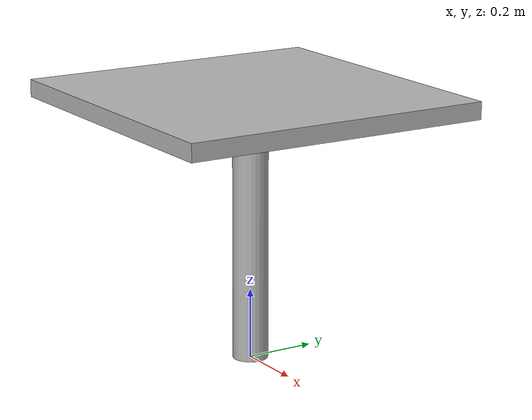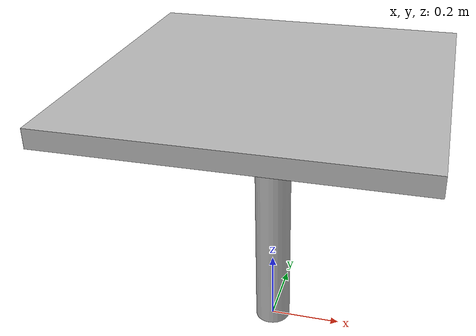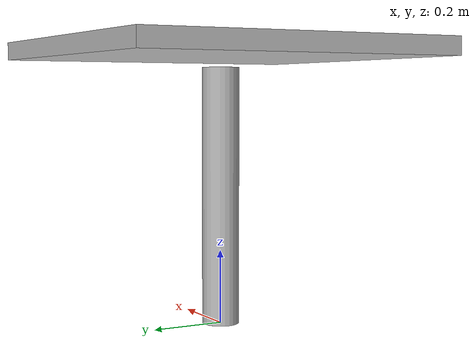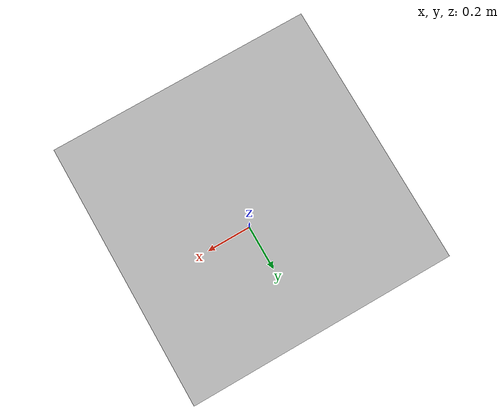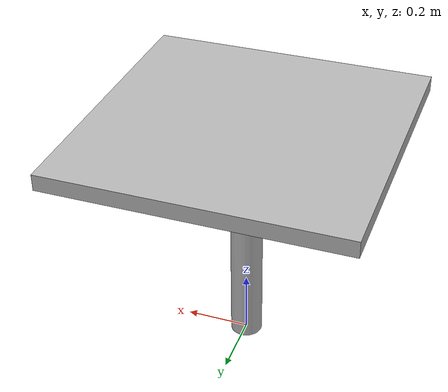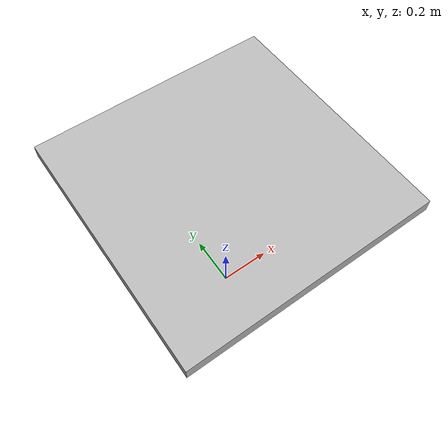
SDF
<sdf version="1.7">
  <model name="cafe_table">
    <static>true</static>
    <link name="link">
      <visual name="top">
        <pose>0 0 0.75 0 0 0</pose>
        <geometry><box><size>0.9 0.9 0.05</size></box></geometry>
      </visual>
      <collision name="top_collision">
        <pose>0 0 0.75 0 0 0</pose>
        <geometry><box><size>0.9 0.9 0.05</size></box></geometry>
      </collision>
      <visual name="leg">
        <pose>0 0 0.35 0 0 0</pose>
        <geometry><cylinder><radius>0.05</radius><length>0.7</length></cylinder></geometry>
      </visual>
      <collision name="leg_collision">
        <pose>0 0 0.35 0 0 0</pose>
        <geometry><cylinder><radius>0.05</radius><length>0.7</length></cylinder></geometry>
      </collision>
    </link>
  </model>
</sdf>
